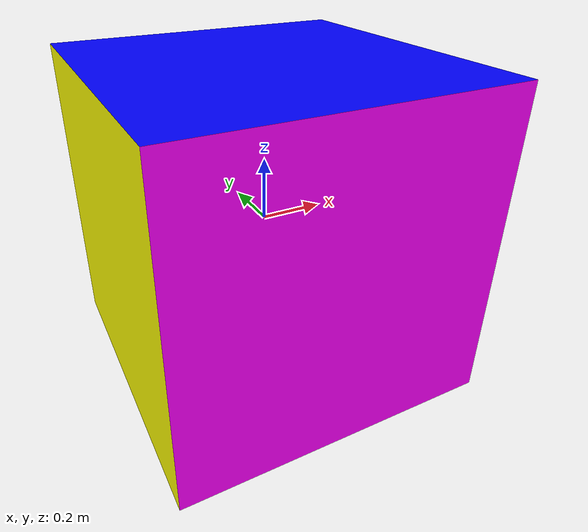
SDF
<sdf version='1.7'>
  <model name='simple_block_v2'>
    <link name='link'>
      <inertial>
        <mass>1</mass>
        <inertia>
          <ixx>0.166667</ixx>
          <ixy>0</ixy>
          <ixz>0</ixz>
          <iyy>0.166667</iyy>
          <iyz>0</iyz>
          <izz>0.166667</izz>
        </inertia>
        <pose>0 0 0 0 -0 0</pose>
      </inertial>
      <self_collide>0</self_collide>
      <enable_wind>0</enable_wind>
      <kinematic>0</kinematic>
      <pose>0 0 0 0 -0 0</pose>
      <gravity>1</gravity>
      <visual name='visual_xn'>
        <laser_retro>1</laser_retro>
        <geometry>
          <box>
            <size>0.000001 1 1</size>
          </box>
        </geometry>
        <material>
          <script>
            <name>Gazebo/Grey</name>
            <uri>file://media/materials/scripts/gazebo.material</uri>
          </script>
          <shader type='pixel'>
            <normal_map>__default__</normal_map>
          </shader>
          <ambient>1.0 1.0 0.0 1</ambient>
          <diffuse>0.7 0.7 0.7 1</diffuse>
          <specular>0.01 0.01 0.01 1</specular>
          <emissive>0 0 0 1</emissive>
        </material>
        <pose>-0.5 0 0 0 -0 0</pose>
        <transparency>0</transparency>
        <cast_shadows>0</cast_shadows>
      </visual>
      <visual name='visual_xp'>
        <laser_retro>2</laser_retro>
        <geometry>
          <box>
            <size>0.000001 1 1</size>
          </box>
        </geometry>
        <material>
          <script>
            <name>Gazebo/Grey</name>
            <uri>file://media/materials/scripts/gazebo.material</uri>
          </script>
          <shader type='pixel'>
            <normal_map>__default__</normal_map>
          </shader>
          <ambient>1.0 0.0 0.0 1</ambient>
          <diffuse>0.7 0.7 0.7 1</diffuse>
          <specular>0.01 0.01 0.01 1</specular>
          <emissive>0 0 0 1</emissive>
        </material>
        <pose>0.5 0 0 0 -0 0</pose>
        <transparency>0</transparency>
        <cast_shadows>0</cast_shadows>
      </visual>
      <visual name='visual_yn'>
        <laser_retro>3</laser_retro>
        <geometry>
          <box>
            <size>1 0.000001 1</size>
          </box>
        </geometry>
        <material>
          <script>
            <name>Gazebo/Grey</name>
            <uri>file://media/materials/scripts/gazebo.material</uri>
          </script>
          <shader type='pixel'>
            <normal_map>__default__</normal_map>
          </shader>
          <ambient>1.0 0.0 1.0 1</ambient>
          <diffuse>0.7 0.7 0.7 1</diffuse>
          <specular>0.01 0.01 0.01 1</specular>
          <emissive>0 0 0 1</emissive>
        </material>
        <pose>0 -0.5 0 0 -0 0</pose>
        <transparency>0</transparency>
        <cast_shadows>0</cast_shadows>
      </visual>
      <visual name='visual_yp'>
        <laser_retro>4</laser_retro>
        <geometry>
          <box>
            <size>1 0.000001 1</size>
          </box>
        </geometry>
        <material>
          <script>
            <name>Gazebo/Grey</name>
            <uri>file://media/materials/scripts/gazebo.material</uri>
          </script>
          <shader type='pixel'>
            <normal_map>__default__</normal_map>
          </shader>
          <ambient>0.0 1.0 0.0 1</ambient>
          <diffuse>0.7 0.7 0.7 1</diffuse>
          <specular>0.01 0.01 0.01 1</specular>
          <emissive>0 0 0 1</emissive>
        </material>
        <pose>0 0.5 0 0 -0 0</pose>
        <transparency>0</transparency>
        <cast_shadows>0</cast_shadows>
      </visual>
      <visual name='visual_zn'>
        <laser_retro>5</laser_retro>
        <geometry>
          <box>
            <size>1 1 0.000001</size>
          </box>
        </geometry>
        <material>
          <script>
            <name>Gazebo/Grey</name>
            <uri>file://media/materials/scripts/gazebo.material</uri>
          </script>
          <shader type='pixel'>
            <normal_map>__default__</normal_map>
          </shader>
          <ambient>0.6 1.0 1.0 1</ambient>
          <diffuse>0.7 0.7 0.7 1</diffuse>
          <specular>0.01 0.01 0.01 1</specular>
          <emissive>0 0 0 1</emissive>
        </material>
        <pose>0 0 -0.5 0 -0 0</pose>
        <transparency>0</transparency>
        <cast_shadows>0</cast_shadows>
      </visual>
      <visual name='visual_zp'>
        <laser_retro>6</laser_retro>
        <geometry>
          <box>
            <size>1 1 0.000001</size>
          </box>
        </geometry>
        <material>
          <script>
            <name>Gazebo/Grey</name>
            <uri>file://media/materials/scripts/gazebo.material</uri>
          </script>
          <shader type='pixel'>
            <normal_map>__default__</normal_map>
          </shader>
          <ambient>0.0 0.0 1.0 1</ambient>
          <diffuse>0.7 0.7 0.7 1</diffuse>
          <specular>0.01 0.01 0.01 1</specular>
          <emissive>0 0 0 1</emissive>
        </material>
        <pose>0 0 0.5 0 -0 0</pose>
        <transparency>0</transparency>
        <cast_shadows>0</cast_shadows>
      </visual>
      <collision name='collision'>
        <laser_retro>0</laser_retro>
        <max_contacts>10</max_contacts>
        <pose>0 0 0 0 -0 0</pose>
        <geometry>
          <box>
            <size>1 1 1</size>
          </box>
        </geometry>
        <surface>
          <friction>
            <ode>
              <mu>1</mu>
              <mu2>1</mu2>
              <fdir1>0 0 0</fdir1>
              <slip1>0</slip1>
              <slip2>0</slip2>
            </ode>
            <torsional>
              <coefficient>1</coefficient>
              <patch_radius>0</patch_radius>
              <surface_radius>0</surface_radius>
              <use_patch_radius>1</use_patch_radius>
              <ode>
                <slip>0</slip>
              </ode>
            </torsional>
          </friction>
          <bounce>
            <restitution_coefficient>0</restitution_coefficient>
            <threshold>1e+06</threshold>
          </bounce>
          <contact>
            <collide_without_contact>0</collide_without_contact>
            <collide_without_contact_bitmask>1</collide_without_contact_bitmask>
            <collide_bitmask>1</collide_bitmask>
            <ode>
              <soft_cfm>0</soft_cfm>
              <soft_erp>0.2</soft_erp>
              <kp>1e+13</kp>
              <kd>1</kd>
              <max_vel>0.01</max_vel>
              <min_depth>0</min_depth>
            </ode>
            <bullet>
              <split_impulse>1</split_impulse>
              <split_impulse_penetration_threshold>-0.01</split_impulse_penetration_threshold>
              <soft_cfm>0</soft_cfm>
              <soft_erp>0.2</soft_erp>
              <kp>1e+13</kp>
              <kd>1</kd>
            </bullet>
          </contact>
        </surface>
      </collision>
    </link>
    <static>1</static>
    <allow_auto_disable>1</allow_auto_disable>
  </model>
</sdf>
